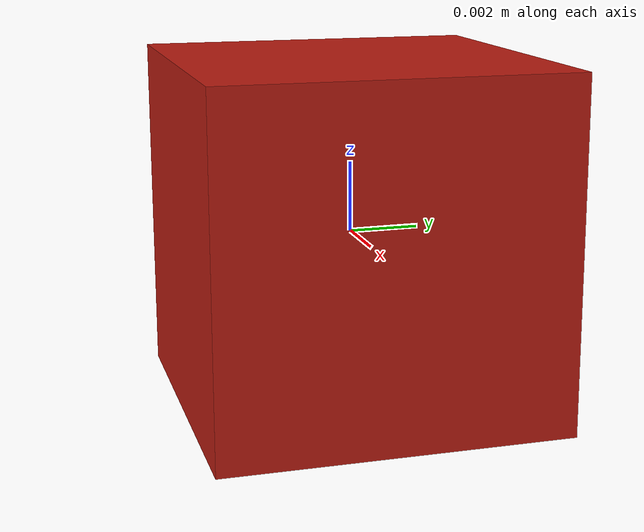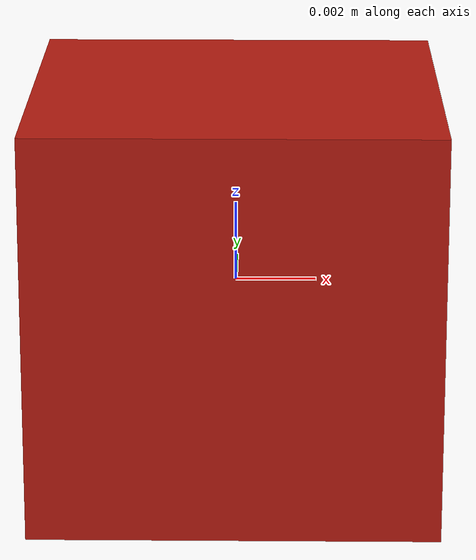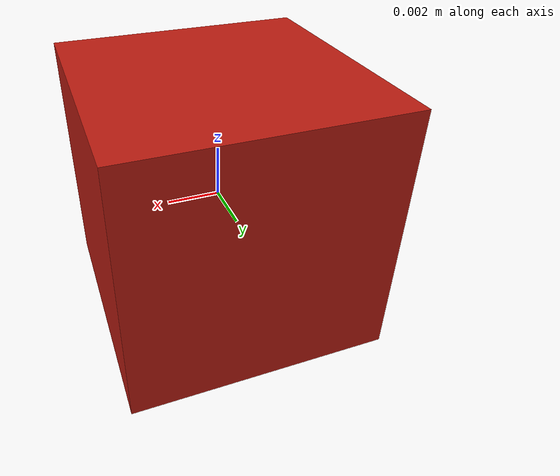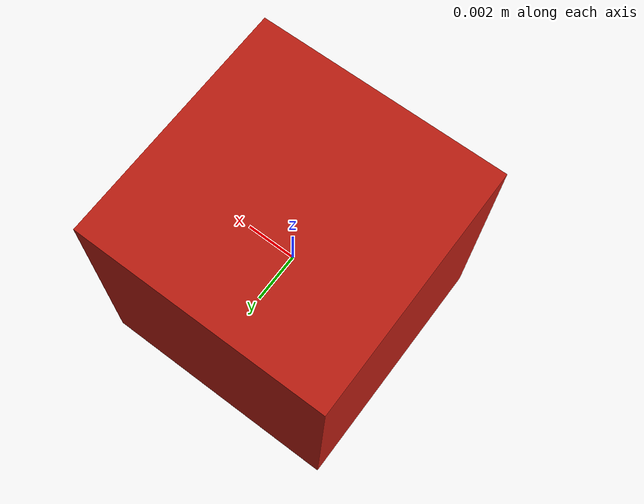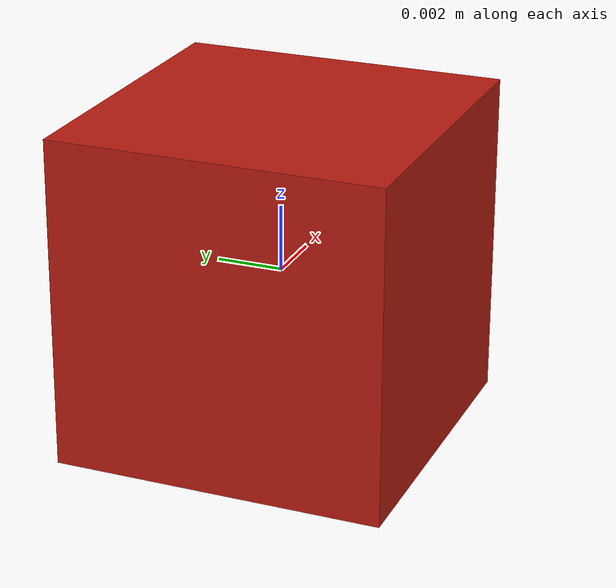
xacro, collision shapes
<?xml version="1.0"?>

<robot xmlns:sensor="http://playerstage.sourceforge.net/gazebo/xmlschema/#sensor"
       xmlns:controller="http://playerstage.sourceforge.net/gazebo/xmlschema/#controller"
       xmlns:interface="http://playerstage.sourceforge.net/gazebo/xmlschema/#interface"
       xmlns:xacro="http://ros.org/wiki/xacro"
			 name="pioneer3dx">

	<link name="base_link">
		<inertial>
			<mass value="3.5"/>
      <origin xyz="-0.025 0 -0.223"/>
      <inertia ixx="1" ixy="0" ixz="0"
               iyy="1" iyz="0"
               izz="1"/>
  	 	</inertial>
      <visual name="base_visual">
        <origin xyz="0 0 0" rpy="0 0 0"/>
				<geometry name="pioneer_geom">
					<mesh filename="package://pioneer_urdf/meshes/body.stl"/>
        </geometry>
				<material name="base_material">
					<color rgba="0.73046875 0.109375 0.06640625 1"/>
				</material>

			</visual>
      <collision>
        <origin xyz="0 0 0" rpy="0 0 0"/>
        <geometry>
          <box size="0.01 0.01 0.01"/>
        </geometry>
      </collision>
	</link>
	<link name="chassis_top">
		<inertial>
			<mass value="3.5"/>
      <origin xyz="-0.025 0 -0.223"/>
      <inertia ixx="1" ixy="0" ixz="0"
               iyy="1" iyz="0"
               izz="1"/>
  	 	</inertial>
      <visual name="base_visual">
        <origin xyz="0 0 0" rpy="0 0 0"/>
				<geometry name="pioneer_geom">
					<mesh filename="package://pioneer_urdf/meshes/chassis_top.stl"/>
        </geometry>
				<material name="base_material">
					<color rgba="0.73046875 0.109375 0.06640625 1"/>
				</material>

			</visual>
      <collision>
        <origin xyz="0 0 0" rpy="0 0 0"/>
        <geometry>
          <box size="0 0 0"/>
        </geometry>
      </collision>
	</link>

	<link name="top_plate">
			<inertial>
			<mass value="0"/>
      <origin xyz="-0.025 0 -0.223"/>
      <inertia ixx="1" ixy="0" ixz="0"
               iyy="1" iyz="0"
               izz="1"/>
  	 	</inertial>
      <visual name="base_visual">
        <origin xyz="0 0 0" rpy="0 0 0"/>
				<geometry name="pioneer_geom">
					<mesh filename="package://pioneer_urdf/meshes/top_plate.stl"/>
        </geometry>
				<material name="top_material">
					<color rgba="0 0 0 1"/>
				</material>
			</visual>
      <collision>
        <origin xyz="0 0 0" rpy="0 0 0"/>
        <geometry>
          <box size="0 0 0"/>
        </geometry>
      </collision>
	</link>

	<link name="caster_plate">
			<inertial>
			<mass value="0"/>
      <origin xyz="0 0 0"/>
      <inertia ixx="1" ixy="0" ixz="0"
               iyy="1" iyz="0"
               izz="1"/>
  	 	</inertial>
      <visual name="base_visual">
        <origin xyz="0 0 0" rpy="0 0 0"/>
				<geometry name="pioneer_geom">
					<mesh filename="package://pioneer_urdf/meshes/caster_plate.stl"/>
        </geometry>
				<material name="caster_material">
					<color rgba="0.5 0.5 0.5 1"/>
				</material>
			</visual>
      <collision>
        <origin xyz="0 0 0" rpy="0 0 0"/>
        <geometry>
          <box size="0 0 0"/>
        </geometry>
      </collision>
	</link>
	<link name="caster_mount">
			<inertial>
			<mass value="0"/>
      <origin xyz="0 0 0"/>
      <inertia ixx="1" ixy="0" ixz="0"
               iyy="1" iyz="0"
               izz="1"/>
  	 	</inertial>
      <visual name="base_visual">
        <origin xyz="0 0 0" rpy="0 0 0"/>
				<geometry name="pioneer_geom">
					<mesh filename="package://pioneer_urdf/meshes/caster_mount.stl"/>
        </geometry>
				<material name="caster_material">
					<color rgba="0.5 0.5 0.5 1"/>
				</material>
			</visual>
      <collision>
        <origin xyz="0 0 0" rpy="0 0 0"/>
        <geometry>
          <box size="0 0 0"/>
        </geometry>
      </collision>
	</link>

	<link name="sonar">
			<inertial>
			<mass value="0"/>
      <origin xyz="0 0 0"/>
      <inertia ixx="1" ixy="0" ixz="0"
               iyy="1" iyz="0"
               izz="1"/>
  	 	</inertial>
      <visual name="base_visual">
        <origin xyz="0 0 0" rpy="0 0 0"/>
				<geometry name="pioneer_geom">
					<mesh filename="package://pioneer_urdf/meshes/sonars.stl"/>
        </geometry>
				<material name="sonar_material">
					<color rgba=".71875 0.48828125 0 1"/>
				</material>
			</visual>
      <collision>
        <origin xyz="0 0 0" rpy="0 0 0"/>
        <geometry>
          <box size="0 0 0"/>
        </geometry>
      </collision>
	</link>
	<link name="wheels_link">
			<inertial>
			<mass value="0"/>
      <origin xyz="0 0 0"/>
      <inertia ixx="1" ixy="0" ixz="0"
               iyy="1" iyz="0"
               izz="1"/>
  	 	</inertial>
      <visual name="base_visual">
        <origin xyz="0 0 0" rpy="0 0 0"/>
				<geometry name="pioneer_geom">
					<mesh filename="package://pioneer_urdf/meshes/wheels-center.stl"/>
        </geometry>
				<material name="sonar_material">
					<color rgba=".71875 0.48828125 0 1"/>
				</material>
			</visual>
      <collision>
        <origin xyz="0 0 0" rpy="0 0 0"/>
        <geometry>
          <box size="0 0 0"/>
        </geometry>
      </collision>
	</link>
	<link name="tires">
			<inertial>
			<mass value="0"/>
      <origin xyz="-0.025 0 -0.223"/>
      <inertia ixx="1" ixy="0" ixz="0"
               iyy="1" iyz="0"
               izz="1"/>
  	 	</inertial>
      <visual name="base_visual">
        <origin xyz="0 0 0" rpy="0 0 0"/>
				<geometry name="pioneer_geom">
					<mesh filename="package://pioneer_urdf/meshes/tires.stl"/>
        </geometry>
				<material name="top_material">
					<color rgba="0 0 0 1"/>
				</material>
			</visual>
      <collision>
        <origin xyz="0 0 0" rpy="0 0 0"/>
        <geometry>
          <box size="0 0 0"/>
        </geometry>
      </collision>
	</link>
	<joint name="base_top_joint" type="fixed">
    <origin xyz="0 0 0" rpy="0 0 0"/>
		<parent link="base_link"/>
		<child link="top_plate"/>
	</joint>
	<joint name="base_chassis_joint" type="fixed">
    <origin xyz="0 0 0" rpy="0 0 0"/>
		<parent link="base_link"/>
		<child link="chassis_top"/>
	</joint>
	<joint name="base_caster_joint" type="fixed">
    <origin xyz="0 0 0" rpy="0 0 0"/>
		<parent link="base_link"/>
		<child link="caster_plate"/>
	</joint>
	<joint name="sonar_joint" type="fixed">
    <origin xyz="0 0 0" rpy="0 0 0"/>
		<parent link="base_link"/>
		<child link="sonar"/>
	</joint>
	<joint name="wheels_joint" type="fixed">
    <origin xyz="0 0 0" rpy="0 0 0"/>
		<parent link="base_link"/>
		<child link="wheels_link"/>
	</joint>
	<joint name="tires_joint" type="fixed">
    <origin xyz="0 0 0" rpy="0 0 0"/>
		<child link="tires"/>
		<parent link="wheels_link"/>
	</joint>
	<joint name="plate_caster_joint" type="fixed">
    <origin xyz="0 0 0" rpy="0 0 0"/>
		<parent link="caster_plate"/>
		<child link="caster_mount"/>
	</joint>
</robot>
